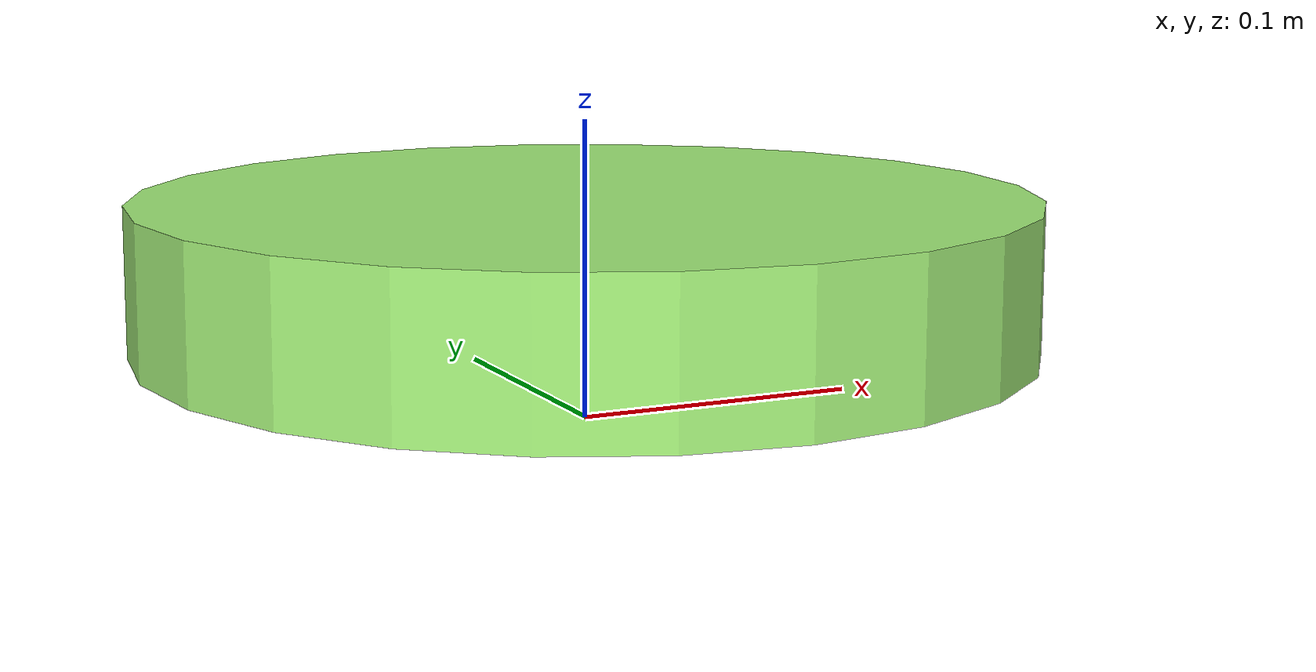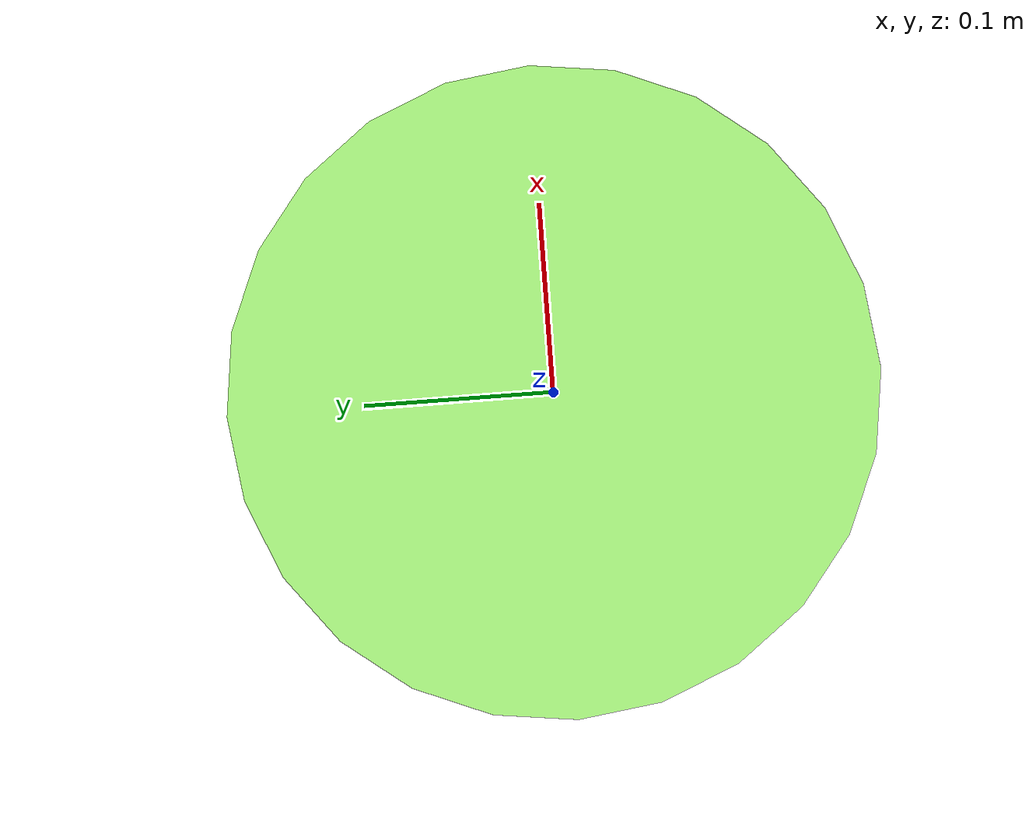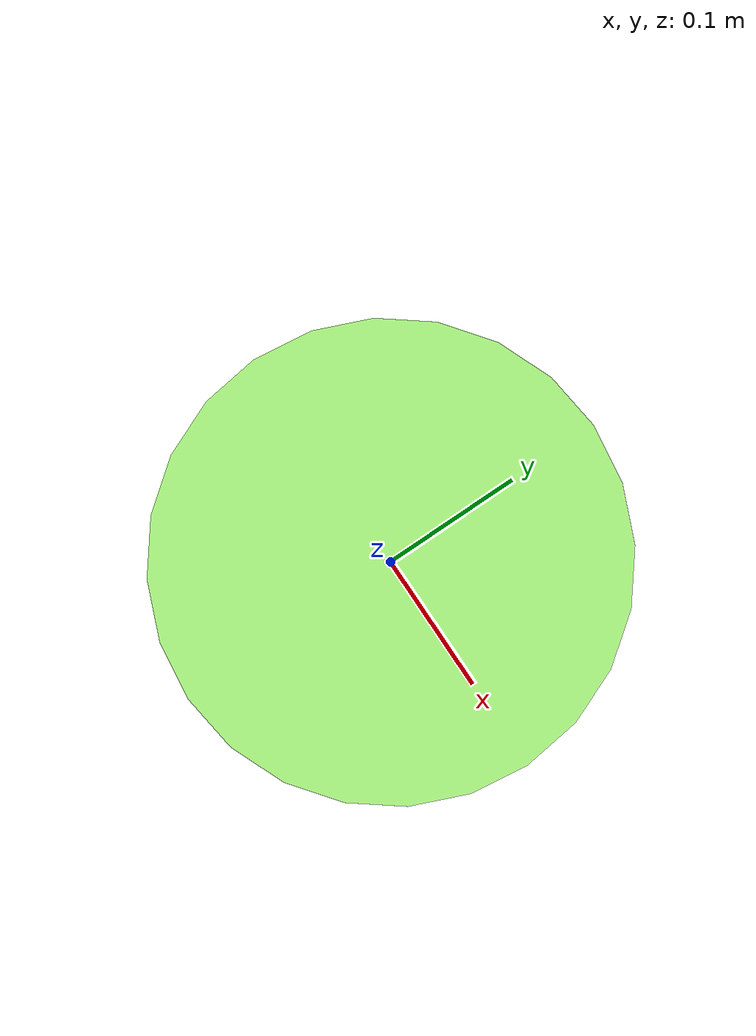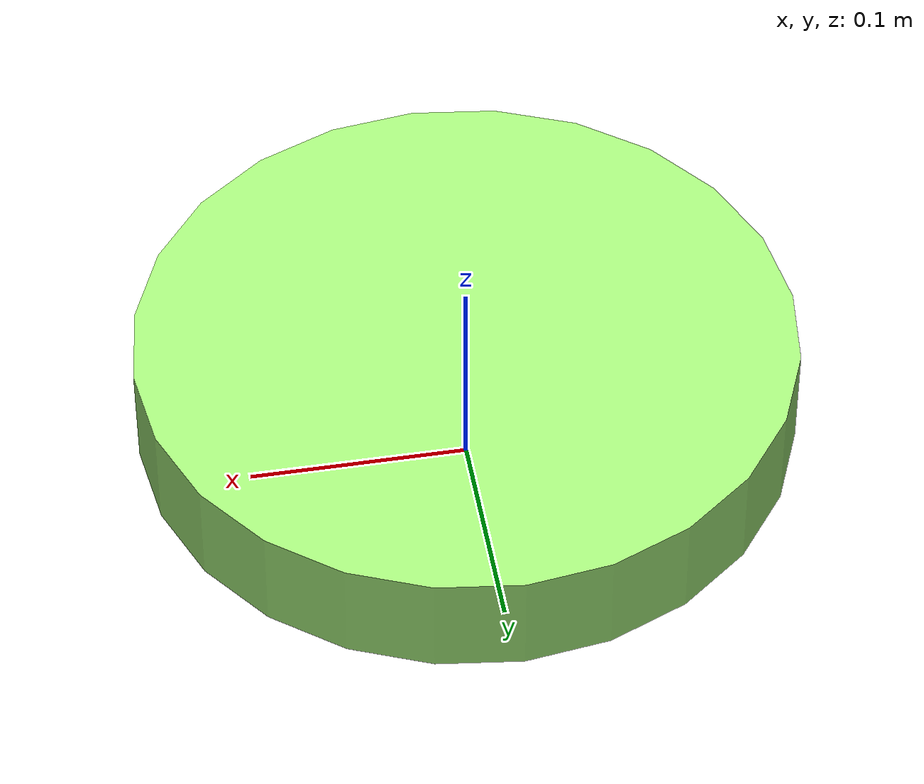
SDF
<?xml version="1.0"?>
<sdf version="1.7">
    <model name="round_target">
        <link name="base_link">
            <pose>0 0 0.025 0 0 0</pose>
            <inertial>
                <pose>0 0 0 0 0 0</pose>
                <mass>1</mass>
                <inertia>
                    <ixx>0.002708</ixx>
                    <ixy>0</ixy>
                    <ixz>0</ixz>
                    <iyy>0.002708</iyy>
                    <iyz>0</iyz>
                    <izz>0.005</izz>
                </inertia>
            </inertial>
            <visual name = "visual">
                <pose>0 0 0.025 0 0 0</pose>
                <geometry>
                    <cylinder>
                        <radius>0.15</radius>
                        <length>0.05</length>
                    </cylinder>
                </geometry>
                <material>
                    <diffuse>0.647 0.941 0.478 1</diffuse>
                </material>
            </visual>
            <collision name = "collision">
                <pose>0 0 0.025 0 0 0</pose>
                <geometry>
                    <cylinder>
                        <radius>0.15</radius>
                        <length>0.05</length>
                    </cylinder>
                </geometry>
            </collision>
        </link>
    </model>
</sdf>
